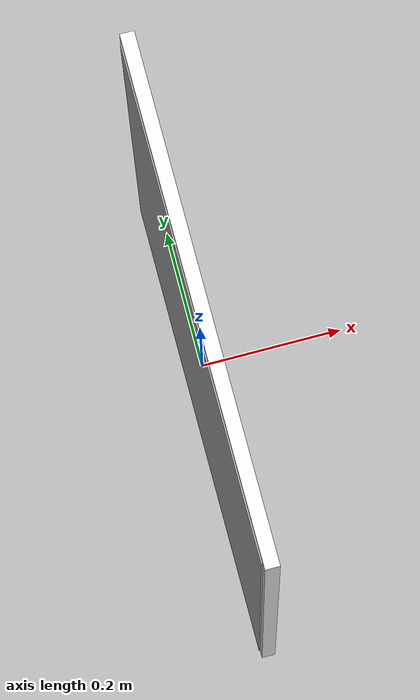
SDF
<?xml version="1.0"?>
<sdf version="1.6">
  <model name="aprilgrid_6x6_tag36h11_88mm">
    <static>true</static>
    <link name="board">
      <collision name="plate_collision">
        <geometry><box><size>0.020 0.7328 0.7328</size></box></geometry>
      </collision>
      <visual name="plate_backing">
        <geometry><box><size>0.020 0.7328 0.7328</size></box></geometry>
        <material>
          <script>
            <uri>file://media/materials/scripts/gazebo.material</uri>
            <name>Gazebo/White</name>
          </script>
        </material>
      </visual>
      <visual name="official_aprilgrid_target">
        <!-- Camera starts on the negative-X side; expose the textured face there. -->
        <pose>-0.0111 0 0 0 0 0</pose>
        <geometry>
          <box><size>0.002 0.7128 0.7128</size></box>
        </geometry>
        <cast_shadows>false</cast_shadows>
        <material>
          <script>
            <uri>model://aprilgrid_6x6_tag36h11_88mm/materials/scripts</uri>
            <uri>model://aprilgrid_6x6_tag36h11_88mm/materials/textures</uri>
            <name>XGC2/AprilGrid6x6Tag36h11_88mm</name>
          </script>
        </material>
      </visual>
    </link>
  </model>
</sdf>
